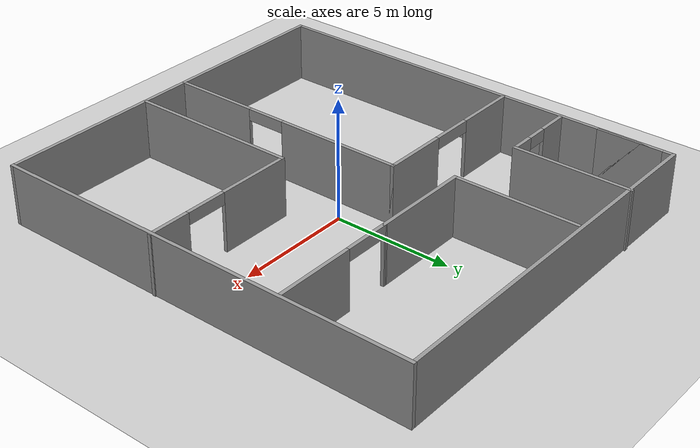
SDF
<sdf version='1.4'>
  <world name='default'>
    <!-- A global light source -->
    <include>
      <uri>model://sun</uri>
    </include>

    <!-- A ground plane -->
    <include>
      <uri>model://ground_plane</uri>
    </include>

    <physics type="ode">
      <real_time_update_rate>1000.0</real_time_update_rate>
      <max_step_size>0.001</max_step_size>
      <real_time_factor>1</real_time_factor>
      <ode>
        <solver>
          <type>quick</type>
          <iters>150</iters>
          <precon_iters>0</precon_iters>
          <sor>1.400000</sor>
          <use_dynamic_moi_rescaling>1</use_dynamic_moi_rescaling>
        </solver>
        <constraints>
          <cfm>0.00001</cfm>
          <erp>0.2</erp>
          <contact_max_correcting_vel>2000.000000</contact_max_correcting_vel>
          <contact_surface_layer>0.01000</contact_surface_layer>
        </constraints>
      </ode>
    </physics>

    <!-- Load world -->
    <include>
      <uri>model://demo</uri>
      <pose>-0.006175 0.333365 0.15 0 0 -1.57</pose> <!-- A bit imprecise -->
    </include>

    <scene>
      <ambient>0.4 0.4 0.4 1</ambient>
      <background>0.7 0.7 0.7 1</background>
      <shadows>true</shadows>
    </scene>

    <gui fullscreen='0'>
      <camera name='user_camera'>
        <pose>0 0 12.0 0 1.57 0</pose>
        <view_controller>orbit</view_controller>
      </camera>
    </gui>
  </world>
</sdf>

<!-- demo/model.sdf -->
<sdf version='1.7'>
  <model name='demo'>
    <pose>0.575781 -2.51803 0 0 -0 0</pose>
    <link name='Wall_17'>
      <collision name='Wall_17_Collision'>
        <geometry>
          <box>
            <size>17.75 0.15 2.5</size>
          </box>
        </geometry>
        <pose>0 0 1.25 0 -0 0</pose>
      </collision>
      <visual name='Wall_17_Visual'>
        <pose>0 0 1.25 0 -0 0</pose>
        <geometry>
          <box>
            <size>17.75 0.15 2.5</size>
          </box>
        </geometry>
        <material>
          <script>
            <uri>file://media/materials/scripts/gazebo.material</uri>
            <name>Gazebo/Grey</name>
          </script>
          <ambient>1 1 1 1</ambient>
        </material>
        <meta>
          <layer>0</layer>
        </meta>
      </visual>
      <pose>0.280874 -7.94512 0 0 -0 0</pose>
    </link>
    <link name='Wall_18'>
      <collision name='Wall_18_Collision'>
        <geometry>
          <box>
            <size>16 0.15 2.5</size>
          </box>
        </geometry>
        <pose>0 0 1.25 0 -0 0</pose>
      </collision>
      <visual name='Wall_18_Visual'>
        <pose>0 0 1.25 0 -0 0</pose>
        <geometry>
          <box>
            <size>16 0.15 2.5</size>
          </box>
        </geometry>
        <material>
          <script>
            <uri>file://media/materials/scripts/gazebo.material</uri>
            <name>Gazebo/Grey</name>
          </script>
          <ambient>1 1 1 1</ambient>
        </material>
        <meta>
          <layer>0</layer>
        </meta>
      </visual>
      <pose>9.08087 -0.020121 0 0 -0 1.5708</pose>
    </link>
    <link name='Wall_19'>
      <collision name='Wall_19_Collision'>
        <geometry>
          <box>
            <size>18.25 0.15 2.5</size>
          </box>
        </geometry>
        <pose>0 0 1.25 0 -0 0</pose>
      </collision>
      <visual name='Wall_19_Visual'>
        <pose>0 0 1.25 0 -0 0</pose>
        <geometry>
          <box>
            <size>18.25 0.15 2.5</size>
          </box>
        </geometry>
        <material>
          <script>
            <uri>file://media/materials/scripts/gazebo.material</uri>
            <name>Gazebo/Grey</name>
          </script>
          <ambient>1 1 1 1</ambient>
        </material>
        <meta>
          <layer>0</layer>
        </meta>
      </visual>
      <pose>0.030874 7.90488 0 0 -0 3.14159</pose>
    </link>
    <link name='Wall_20'>
      <collision name='Wall_20_Collision'>
        <geometry>
          <box>
            <size>16 0.15 2.5</size>
          </box>
        </geometry>
        <pose>0 0 1.25 0 -0 0</pose>
      </collision>
      <visual name='Wall_20_Visual'>
        <pose>0 0 1.25 0 -0 0</pose>
        <geometry>
          <box>
            <size>16 0.15 2.5</size>
          </box>
        </geometry>
        <material>
          <script>
            <uri>file://media/materials/scripts/gazebo.material</uri>
            <name>Gazebo/Grey</name>
          </script>
          <ambient>1 1 1 1</ambient>
        </material>
        <meta>
          <layer>0</layer>
        </meta>
      </visual>
      <pose>-9.01913 -0.020121 0 0 -0 -1.5708</pose>
    </link>
    <link name='Wall_21'>
      <collision name='Wall_21_Collision'>
        <geometry>
          <box>
            <size>3.25 0.15 2.5</size>
          </box>
        </geometry>
        <pose>0 0 1.25 0 -0 0</pose>
      </collision>
      <visual name='Wall_21_Visual'>
        <pose>0 0 1.25 0 -0 0</pose>
        <geometry>
          <box>
            <size>3.25 0.15 2.5</size>
          </box>
        </geometry>
        <material>
          <script>
            <uri>file://media/materials/scripts/gazebo.material</uri>
            <name>Gazebo/Grey</name>
          </script>
          <ambient>1 1 1 1</ambient>
        </material>
        <meta>
          <layer>0</layer>
        </meta>
      </visual>
      <pose>-7.46913 -7.94512 0 0 -0 0</pose>
    </link>
    <link name='Wall_23'>
      <pose>-3.7574 5.21662 0 0 -0 -1.5708</pose>
      <visual name='Wall_23_Visual_0'>
        <pose>-1.00595 0 1.25 0 -0 0</pose>
        <geometry>
          <box>
            <size>3.48809 0.15 2.5</size>
          </box>
        </geometry>
        <material>
          <script>
            <uri>file://media/materials/scripts/gazebo.material</uri>
            <name>Gazebo/Grey</name>
          </script>
          <ambient>1 1 1 1</ambient>
        </material>
        <meta>
          <layer>0</layer>
        </meta>
      </visual>
      <collision name='Wall_23_Collision_0'>
        <geometry>
          <box>
            <size>3.48809 0.15 2.5</size>
          </box>
        </geometry>
        <pose>-1.00595 0 1.25 0 -0 0</pose>
      </collision>
      <visual name='Wall_23_Visual_1'>
        <pose>2.71293 0 1.25 0 -0 0</pose>
        <geometry>
          <box>
            <size>0.074137 0.15 2.5</size>
          </box>
        </geometry>
        <material>
          <script>
            <uri>file://media/materials/scripts/gazebo.material</uri>
            <name>Gazebo/Grey</name>
          </script>
          <ambient>1 1 1 1</ambient>
        </material>
        <meta>
          <layer>0</layer>
        </meta>
      </visual>
      <collision name='Wall_23_Collision_1'>
        <geometry>
          <box>
            <size>0.074137 0.15 2.5</size>
          </box>
        </geometry>
        <pose>2.71293 0 1.25 0 -0 0</pose>
      </collision>
      <visual name='Wall_23_Visual_2'>
        <pose>1.70698 0 2.25 0 -0 0</pose>
        <geometry>
          <box>
            <size>1.93777 0.15 0.5</size>
          </box>
        </geometry>
        <material>
          <script>
            <uri>file://media/materials/scripts/gazebo.material</uri>
            <name>Gazebo/Grey</name>
          </script>
          <ambient>1 1 1 1</ambient>
        </material>
        <meta>
          <layer>0</layer>
        </meta>
      </visual>
      <collision name='Wall_23_Collision_2'>
        <geometry>
          <box>
            <size>1.93777 0.15 0.5</size>
          </box>
        </geometry>
        <pose>1.70698 0 2.25 0 -0 0</pose>
      </collision>
    </link>
    <link name='Wall_24'>
      <collision name='Wall_24_Collision'>
        <geometry>
          <box>
            <size>4.25 0.15 2.5</size>
          </box>
        </geometry>
        <pose>0 0 1.25 0 -0 0</pose>
      </collision>
      <visual name='Wall_24_Visual'>
        <pose>0 0 1.25 0 -0 0</pose>
        <geometry>
          <box>
            <size>4.25 0.15 2.5</size>
          </box>
        </geometry>
        <material>
          <script>
            <uri>file://media/materials/scripts/gazebo.material</uri>
            <name>Gazebo/Grey</name>
          </script>
          <ambient>1 1 1 1</ambient>
        </material>
        <meta>
          <layer>0</layer>
        </meta>
      </visual>
      <pose>-3.7574 0.491619 0 0 -0 -1.5708</pose>
    </link>
    <link name='Wall_25'>
      <collision name='Wall_25_Collision'>
        <geometry>
          <box>
            <size>5.25 0.15 2.5</size>
          </box>
        </geometry>
        <pose>0 0 1.25 0 -0 0</pose>
      </collision>
      <visual name='Wall_25_Visual'>
        <pose>0 0 1.25 0 -0 0</pose>
        <geometry>
          <box>
            <size>5.25 0.15 2.5</size>
          </box>
        </geometry>
        <material>
          <script>
            <uri>file://media/materials/scripts/gazebo.material</uri>
            <name>Gazebo/Grey</name>
          </script>
          <ambient>1 1 1 1</ambient>
        </material>
        <meta>
          <layer>0</layer>
        </meta>
      </visual>
      <pose>-6.3074 -1.55838 0 0 -0 3.14159</pose>
    </link>
    <link name='Wall_27'>
      <pose>1.91386 4.64512 0 0 -0 -1.5708</pose>
      <visual name='Wall_27_Visual_0'>
        <pose>-2.46682 0 1.25 0 -0 0</pose>
        <geometry>
          <box>
            <size>1.81636 0.15 2.5</size>
          </box>
        </geometry>
        <material>
          <script>
            <uri>file://media/materials/scripts/gazebo.material</uri>
            <name>Gazebo/Grey</name>
          </script>
          <ambient>1 1 1 1</ambient>
        </material>
        <meta>
          <layer>0</layer>
        </meta>
      </visual>
      <collision name='Wall_27_Collision_0'>
        <geometry>
          <box>
            <size>1.81636 0.15 2.5</size>
          </box>
        </geometry>
        <pose>-2.46682 0 1.25 0 -0 0</pose>
      </collision>
      <visual name='Wall_27_Visual_1'>
        <pose>1.78033 0 1.25 0 -0 0</pose>
        <geometry>
          <box>
            <size>3.18935 0.15 2.5</size>
          </box>
        </geometry>
        <material>
          <script>
            <uri>file://media/materials/scripts/gazebo.material</uri>
            <name>Gazebo/Grey</name>
          </script>
          <ambient>1 1 1 1</ambient>
        </material>
        <meta>
          <layer>0</layer>
        </meta>
      </visual>
      <collision name='Wall_27_Collision_1'>
        <geometry>
          <box>
            <size>3.18935 0.15 2.5</size>
          </box>
        </geometry>
        <pose>1.78033 0 1.25 0 -0 0</pose>
      </collision>
      <visual name='Wall_27_Visual_2'>
        <pose>-0.686493 0 2.25 0 -0 0</pose>
        <geometry>
          <box>
            <size>1.74429 0.15 0.5</size>
          </box>
        </geometry>
        <material>
          <script>
            <uri>file://media/materials/scripts/gazebo.material</uri>
            <name>Gazebo/Grey</name>
          </script>
          <ambient>1 1 1 1</ambient>
        </material>
        <meta>
          <layer>0</layer>
        </meta>
      </visual>
      <collision name='Wall_27_Collision_2'>
        <geometry>
          <box>
            <size>1.74429 0.15 0.5</size>
          </box>
        </geometry>
        <pose>-0.686493 0 2.25 0 -0 0</pose>
      </collision>
    </link>
    <link name='Wall_28'>
      <collision name='Wall_28_Collision'>
        <geometry>
          <box>
            <size>7.25 0.15 2.5</size>
          </box>
        </geometry>
        <pose>0 0 1.25 0 -0 0</pose>
      </collision>
      <visual name='Wall_28_Visual'>
        <pose>0 0 1.25 0 -0 0</pose>
        <geometry>
          <box>
            <size>7.25 0.15 2.5</size>
          </box>
        </geometry>
        <material>
          <script>
            <uri>file://media/materials/scripts/gazebo.material</uri>
            <name>Gazebo/Grey</name>
          </script>
          <ambient>1 1 1 1</ambient>
        </material>
        <meta>
          <layer>0</layer>
        </meta>
      </visual>
      <pose>5.46386 1.34512 0 0 -0 0</pose>
    </link>
    <link name='Wall_32'>
      <pose>-1.5638 -4.34162 0 0 -0 1.5708</pose>
      <visual name='Wall_32_Visual_0'>
        <pose>-2.28559 0 1.25 0 -0 0</pose>
        <geometry>
          <box>
            <size>2.67882 0.15 2.5</size>
          </box>
        </geometry>
        <material>
          <script>
            <uri>file://media/materials/scripts/gazebo.material</uri>
            <name>Gazebo/Grey</name>
          </script>
          <ambient>1 1 1 1</ambient>
        </material>
        <meta>
          <layer>0</layer>
        </meta>
      </visual>
      <collision name='Wall_32_Collision_0'>
        <geometry>
          <box>
            <size>2.67882 0.15 2.5</size>
          </box>
        </geometry>
        <pose>-2.28559 0 1.25 0 -0 0</pose>
      </collision>
      <visual name='Wall_32_Visual_1'>
        <pose>2.23139 0 1.25 0 -0 0</pose>
        <geometry>
          <box>
            <size>2.78722 0.15 2.5</size>
          </box>
        </geometry>
        <material>
          <script>
            <uri>file://media/materials/scripts/gazebo.material</uri>
            <name>Gazebo/Grey</name>
          </script>
          <ambient>1 1 1 1</ambient>
        </material>
        <meta>
          <layer>0</layer>
        </meta>
      </visual>
      <collision name='Wall_32_Collision_1'>
        <geometry>
          <box>
            <size>2.78722 0.15 2.5</size>
          </box>
        </geometry>
        <pose>2.23139 0 1.25 0 -0 0</pose>
      </collision>
      <visual name='Wall_32_Visual_2'>
        <pose>-0.054198 0 2.25 0 -0 0</pose>
        <geometry>
          <box>
            <size>1.78395 0.15 0.5</size>
          </box>
        </geometry>
        <material>
          <script>
            <uri>file://media/materials/scripts/gazebo.material</uri>
            <name>Gazebo/Grey</name>
          </script>
          <ambient>1 1 1 1</ambient>
        </material>
        <meta>
          <layer>0</layer>
        </meta>
      </visual>
      <collision name='Wall_32_Collision_2'>
        <geometry>
          <box>
            <size>1.78395 0.15 0.5</size>
          </box>
        </geometry>
        <pose>-0.054198 0 2.25 0 -0 0</pose>
      </collision>
    </link>
    <link name='Wall_33'>
      <pose>3.7362 -0.791619 0 0 -0 0</pose>
      <visual name='Wall_33_Visual_0'>
        <pose>-2.66687 0 1.25 0 -0 0</pose>
        <geometry>
          <box>
            <size>5.41627 0.15 2.5</size>
          </box>
        </geometry>
        <material>
          <script>
            <uri>file://media/materials/scripts/gazebo.material</uri>
            <name>Gazebo/Grey</name>
          </script>
          <ambient>1 1 1 1</ambient>
        </material>
        <meta>
          <layer>0</layer>
        </meta>
      </visual>
      <collision name='Wall_33_Collision_0'>
        <geometry>
          <box>
            <size>5.41627 0.15 2.5</size>
          </box>
        </geometry>
        <pose>-2.66687 0 1.25 0 -0 0</pose>
      </collision>
      <visual name='Wall_33_Visual_1'>
        <pose>3.5451 0 1.25 0 -0 0</pose>
        <geometry>
          <box>
            <size>3.6598 0.15 2.5</size>
          </box>
        </geometry>
        <material>
          <script>
            <uri>file://media/materials/scripts/gazebo.material</uri>
            <name>Gazebo/Grey</name>
          </script>
          <ambient>1 1 1 1</ambient>
        </material>
        <meta>
          <layer>0</layer>
        </meta>
      </visual>
      <collision name='Wall_33_Collision_1'>
        <geometry>
          <box>
            <size>3.6598 0.15 2.5</size>
          </box>
        </geometry>
        <pose>3.5451 0 1.25 0 -0 0</pose>
      </collision>
      <visual name='Wall_33_Visual_2'>
        <pose>0.878232 0 2.25 0 -0 0</pose>
        <geometry>
          <box>
            <size>1.67393 0.15 0.5</size>
          </box>
        </geometry>
        <material>
          <script>
            <uri>file://media/materials/scripts/gazebo.material</uri>
            <name>Gazebo/Grey</name>
          </script>
          <ambient>1 1 1 1</ambient>
        </material>
        <meta>
          <layer>0</layer>
        </meta>
      </visual>
      <collision name='Wall_33_Collision_2'>
        <geometry>
          <box>
            <size>1.67393 0.15 0.5</size>
          </box>
        </geometry>
        <pose>0.878232 0 2.25 0 -0 0</pose>
      </collision>
    </link>
    <link name='Wall_35'>
      <collision name='Wall_35_Collision'>
        <geometry>
          <box>
            <size>5 0.15 2.5</size>
          </box>
        </geometry>
        <pose>0 0 1.25 0 -0 0</pose>
      </collision>
      <visual name='Wall_35_Visual'>
        <pose>0 0 1.25 0 -0 0</pose>
        <geometry>
          <box>
            <size>5 0.15 2.5</size>
          </box>
        </geometry>
        <material>
          <script>
            <uri>file://media/materials/scripts/gazebo.material</uri>
            <name>Gazebo/Grey</name>
          </script>
          <ambient>1 1 1 1</ambient>
        </material>
        <meta>
          <layer>0</layer>
        </meta>
      </visual>
      <pose>-6.65587 -4.7254 0 0 -0 0</pose>
    </link>
    <link name='Wall_36'>
      <pose>-4.23088 -6.2754 0 0 -0 -1.5708</pose>
      <visual name='Wall_36_Visual_0'>
        <pose>-1.10241 0 1.25 0 -0 0</pose>
        <geometry>
          <box>
            <size>1.04518 0.15 2.5</size>
          </box>
        </geometry>
        <material>
          <script>
            <uri>file://media/materials/scripts/gazebo.material</uri>
            <name>Gazebo/Grey</name>
          </script>
          <ambient>1 1 1 1</ambient>
        </material>
        <meta>
          <layer>0</layer>
        </meta>
      </visual>
      <collision name='Wall_36_Collision_0'>
        <geometry>
          <box>
            <size>1.04518 0.15 2.5</size>
          </box>
        </geometry>
        <pose>-1.10241 0 1.25 0 -0 0</pose>
      </collision>
      <visual name='Wall_36_Visual_1'>
        <pose>0.97259 0 1.25 0 -0 0</pose>
        <geometry>
          <box>
            <size>1.30482 0.15 2.5</size>
          </box>
        </geometry>
        <material>
          <script>
            <uri>file://media/materials/scripts/gazebo.material</uri>
            <name>Gazebo/Grey</name>
          </script>
          <ambient>1 1 1 1</ambient>
        </material>
        <meta>
          <layer>0</layer>
        </meta>
      </visual>
      <collision name='Wall_36_Collision_1'>
        <geometry>
          <box>
            <size>1.30482 0.15 2.5</size>
          </box>
        </geometry>
        <pose>0.97259 0 1.25 0 -0 0</pose>
      </collision>
      <visual name='Wall_36_Visual_2'>
        <pose>-0.129821 0 2.25 0 -0 0</pose>
        <geometry>
          <box>
            <size>0.9 0.15 0.5</size>
          </box>
        </geometry>
        <material>
          <script>
            <uri>file://media/materials/scripts/gazebo.material</uri>
            <name>Gazebo/Grey</name>
          </script>
          <ambient>1 1 1 1</ambient>
        </material>
        <meta>
          <layer>0</layer>
        </meta>
      </visual>
      <collision name='Wall_36_Collision_2'>
        <geometry>
          <box>
            <size>0.9 0.15 0.5</size>
          </box>
        </geometry>
        <pose>-0.129821 0 2.25 0 -0 0</pose>
      </collision>
    </link>
    <static>1</static>
  </model>
</sdf>
